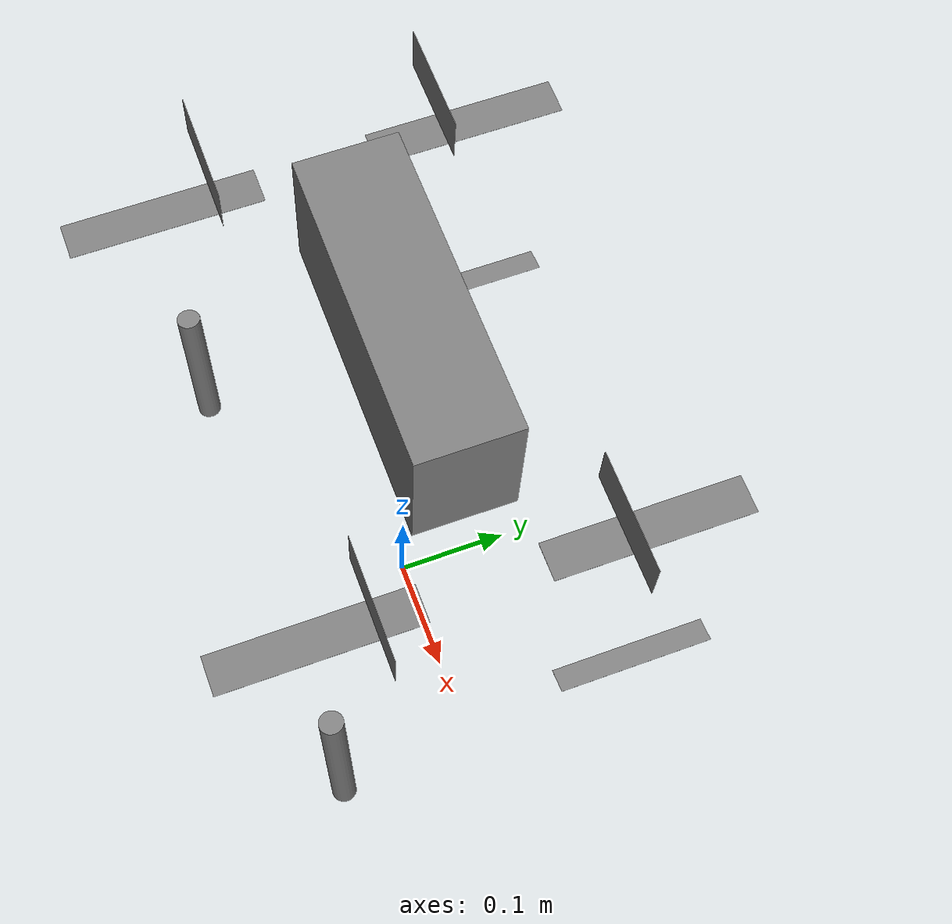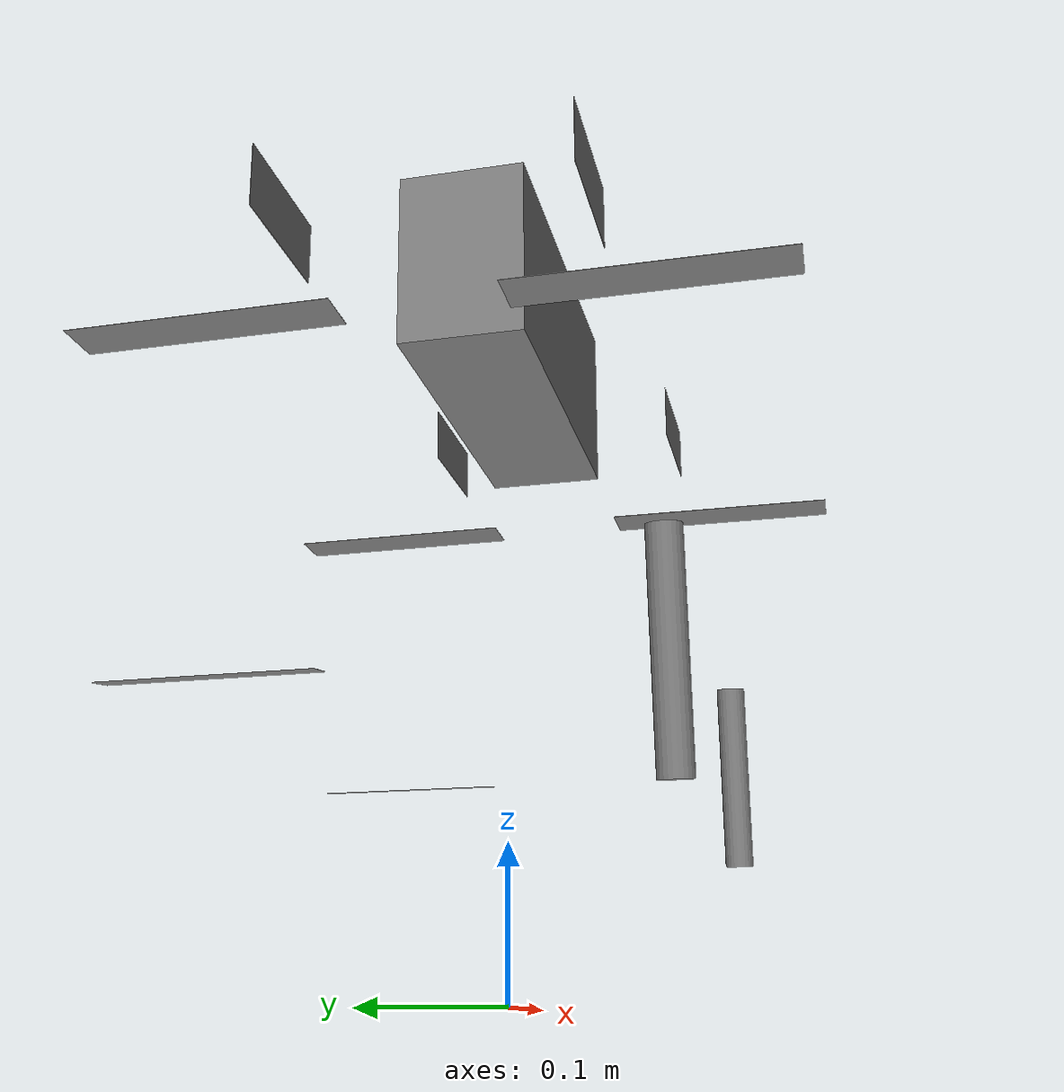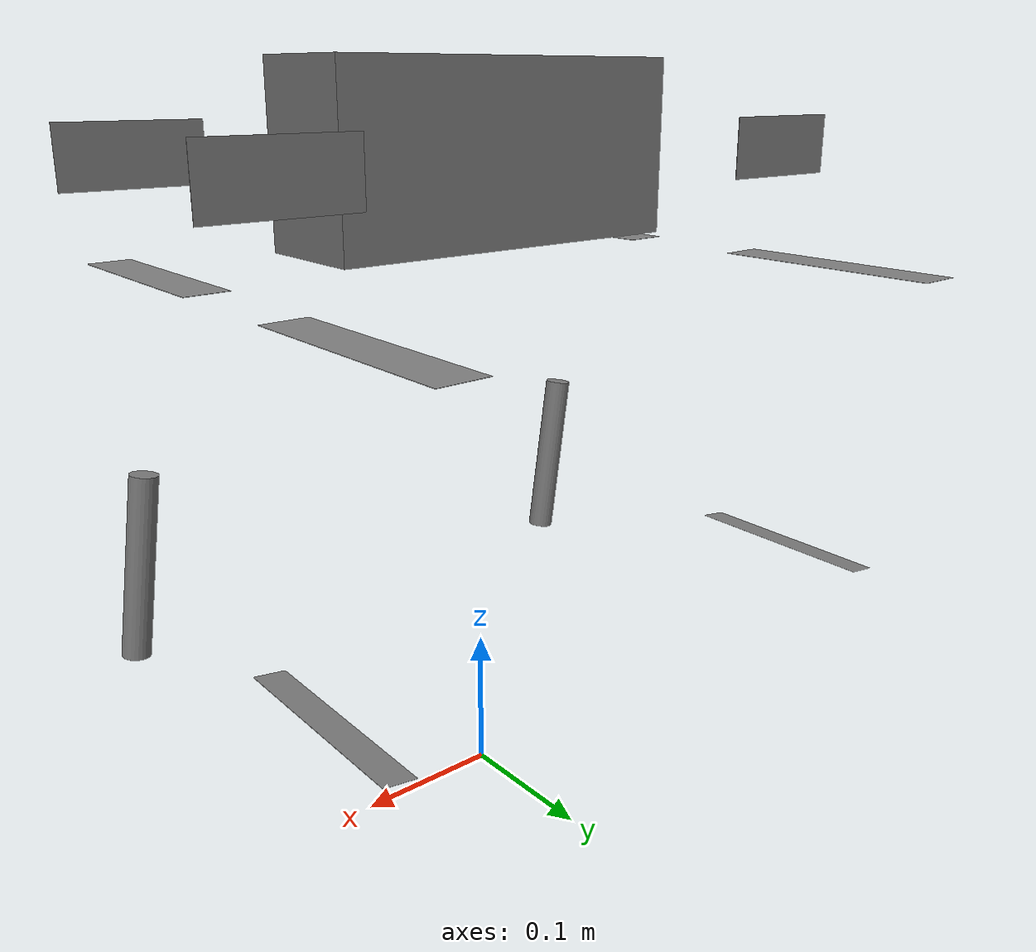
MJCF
<?xml version="1.0" ?>
<mujoco model="generated_robot">
  <compiler angle="radian" autolimits="true"/>
  <option cone="elliptic" impratio="100"/>
  <default>
    <default class="robot">
      <geom friction="0.6" margin="0.001"/>
      <joint damping="2" armature="0.01"/>
    </default>
  </default>
  <worldbody>
    <body name="body_0" pos="0.0001559099182486534 -2.3074069758877158e-05 0.4458831548690796" quat="1.0000097751617432 -0.0001415051519870758 -8.110888302326202e-05 1.9720755517482758e-05">
      <inertial mass="5.231388092041016" diaginertia="0.07207655161619186 0.0632186233997345 0.016897588968276978" pos="0.02246175892651081 0.002006569877266884 -0.00015807151794433594" quat="-0.004950523376464844 0.7062672972679138 -0.00026706233620643616 0.7086466550827026"/>
      <geom name="geom_body_0" type="box" size="0.12551146745681763 0.04006735980510712 0.057250600308179855" pos="0.0001246002793777734 -6.838497938588262e-06 9.211711585521698e-05" quat="1.0018309354782104 -8.264929056167603e-05 1.4204531908035278e-05 -0.00035299058072268963"/>
      <joint name="joint_1_body_0" type="hinge" axis="0.000764116644859314 0.0007713437080383301 1.0017271041870117" range="0.0018395185470581055 -0.005660414695739746" pos="8.658831939101219e-05 0.0015266609843820333 -0.0009988155215978622" stiffness="0.0072043659165501595"/>
      <joint name="joint_2_body_0" type="hinge" axis="1.0032436847686768 -0.0008791089057922363 0.0009414255619049072" range="0 0.86902916431427" pos="0.0011647394858300686 -0.002144098514690995 0.004236141219735146" stiffness="0.00543475616723299"/>
      <body name="body_3" pos="0.18822450935840607 -0.04666043445467949 0.0008230721578001976" quat="0.9996806979179382 0.00041278451681137085 0.0002489890903234482 1.9570812582969666e-05">
        <inertial mass="0.6856133937835693" diaginertia="0.0007475847378373146 0.0006213430315256119 0.0004306142218410969" pos="-0.004905139561742544 0.007485401816666126 0.00038465484976768494" quat="0.5059846639633179 0.5159139037132263 0.49476996064186096 0.48435842990875244"/>
        <geom name="geom_body_3" type="box" size="0.045929498970508575 0.019716305658221245 6.724381819367409e-05" pos="9.386910824105144e-05 -0.044620614498853683 2.8088688850402832e-05" quat="0.7075098752975464 0.7080214619636536 -0.0007904134690761566 -0.0002954199444502592"/>
        <joint name="joint_2_body_3" type="ball" axis="1.0032436847686768 -0.0008791089057922363 0.0009414255619049072" range="0 0.86902916431427" pos="0.0011647394858300686 -0.002144098514690995 0.004236141219735146" stiffness="0.00543475616723299"/>
        <joint name="joint_4_body_3" type="ball" axis="0.0004407614469528198 0.9987324476242065 -0.0003224611282348633" range="0 4.502537250518799" pos="0.0016024238429963589 0.0020660085137933493 0.0034484360367059708" stiffness="0.008321848697960377"/>
        <body name="body_5" pos="0.00023937819059938192 -0.08005650341510773 0.00034152623265981674" quat="1.0001522302627563 -0.0003097411245107651 0.0002756323665380478 6.017275154590607e-05">
          <inertial mass="1.0211026668548584" diaginertia="0.004781339317560196 0.004926311317831278 0.0006828473415225744" pos="-0.0030611567199230194 0.019222833216190338 -0.0296938419342041" quat="0.649500846862793 -0.026713043451309204 0.07670868933200836 0.7574440240859985"/>
          <geom name="geom_body_5" type="box" size="0.015474516898393631 0.07941785454750061 0.0001544523984193802" pos="-0.019892051815986633 1.7923739505931735e-05 -0.07980010658502579" quat="1.0008729696273804 0.0004203692078590393 0.004848208278417587 -5.0697941333055496e-05"/>
          <joint name="joint_4_body_5" type="ball" axis="0.0004407614469528198 0.9987324476242065 -0.0003224611282348633" range="-0.6880797147750854 4.502537250518799" pos="0.0016024238429963589 0.0020660085137933493 0.0034484360367059708" stiffness="0.008321848697960377"/>
          <joint name="joint_6_body_5" type="free" axis="-0.0007094591856002808 0.9972268342971802 0.00032025575637817383" range="-2.822963237762451 -0.8801940679550171" pos="0.0008466816507279873 0.0029061955865472555 -0.0007927771657705307"/>
          <body name="body_7" pos="0.00018269370775669813 -0.00015311286551877856 -0.21187418699264526" quat="0.9994385242462158 -3.306940197944641e-05 4.275701940059662e-05 0.0002353861927986145">
            <inertial mass="0.20291292667388916" diaginertia="0.0017205923795700073 0.001253519207239151 2.9604649171233177e-05" pos="0.004125921055674553 0.001050538499839604 -0.14649400115013123" quat="0.6930393576622009 0.002970069646835327 0.0029065385460853577 0.7221724987030029"/>
            <geom name="geom_body_7" type="cylinder" size="0.010025976225733757 0.06574717164039612" pos="0.010061888955533504 9.575975127518177e-06 -0.06522606313228607" quat="0.9983668923377991 0.0022449493408203125 -0.07306790351867676 -0.00040663802064955235"/>
            <joint name="joint_6_body_7" type="free" axis="-0.0007094591856002808 0.9972268342971802 0.00032025575637817383" range="-2.822963237762451 -0.8801940679550171" pos="0.0008466816507279873 0.0029061955865472555 -0.0007927771657705307"/>
          </body>
        </body>
      </body>
      <joint name="joint_8_body_0" type="hinge" axis="1.0013433694839478 -0.0006708502769470215 0.0011327266693115234" range="0 0.8634499907493591" pos="-0.00013460451737046242 0.00021923310123384 -0.004621079191565514" stiffness="0.004417878575623035"/>
      <body name="body_9" pos="0.18831942975521088 0.04649312049150467 0.00016293954104185104" quat="0.9998779892921448 -1.9609928131103516e-05 0.0001656748354434967 -7.758941501379013e-05">
        <inertial mass="0.6900022625923157" diaginertia="0.000690150074660778 0.0004754820838570595 0.0004710142966359854" pos="-0.004809767473489046 -0.0076555595733225346 0.0002464763820171356" quat="0.4829453229904175 0.4951517581939697 0.513404905796051 0.5089518427848816"/>
        <geom name="geom_body_9" type="box" size="0.04603803530335426 0.01974235475063324 0.0001262882724404335" pos="4.497682675719261e-05 0.04473879188299179 -0.0002659466117620468" quat="0.7096114158630371 0.7072283625602722 0.0002764556556940079 -0.0006416684482246637"/>
        <joint name="joint_8_body_9" type="ball" axis="1.0013433694839478 -0.0006708502769470215 0.0011327266693115234" range="-0.861674964427948 0.8634499907493591" pos="-0.00013460451737046242 0.00021923310123384 -0.004621079191565514" stiffness="0.004417878575623035"/>
        <joint name="joint_10_body_9" type="ball" axis="-0.0013798773288726807 0.9978463649749756 0.0007652342319488525" range="-0.6886460781097412 4.505835056304932" pos="-0.0009174072183668613 -0.0025598781649023294 0.0005572233349084854" stiffness="0.0031467946246266365"/>
        <body name="body_11" pos="9.616720490157604e-06 0.07978498190641403 0.000287029892206192" quat="0.9998443722724915 -0.0006639156490564346 -7.592141628265381e-06 0.0003182338550686836">
          <inertial mass="1.021998643875122" diaginertia="0.004735410213470459 0.004679172765463591 0.0007465369999408722" pos="-0.0030621495097875595 -0.019349927082657814 -0.029802361503243446" quat="0.7505565881729126 0.07823747396469116 -0.027793537825345993 0.6557844281196594"/>
          <geom name="geom_body_11" type="box" size="0.015433249995112419 0.07963097840547562 0.00012821750715374947" pos="-0.019839996472001076 4.451075801625848e-05 -0.07999138534069061" quat="1.0019139051437378 -0.0006290525197982788 0.00475655309855938 7.462059147655964e-05"/>
          <joint name="joint_10_body_11" type="ball" axis="-0.0013798773288726807 0.9978463649749756 0.0007652342319488525" range="-0.6886460781097412 4.505835056304932" pos="-0.0009174072183668613 -0.0025598781649023294 0.0005572233349084854" stiffness="0.0031467946246266365"/>
          <joint name="joint_12_body_11" type="free" axis="-0.000505983829498291 0.9980078935623169 -0.0005637705326080322" range="-2.8258941173553467 -0.8815616369247437" pos="-0.0013963007368147373 -0.003459893399849534 -0.0013032760471105576" stiffness="0.0026979120448231697"/>
          <body name="body_13" pos="0.00028330518398433924 0.00019704242004081607 -0.21119558811187744" quat="0.9995828866958618 -0.0002986881881952286 -0.0001836717128753662 0.0002786600962281227">
            <inertial mass="0.19835209846496582" diaginertia="0.0016031637787818909 0.0012956392019987106 9.740283712744713e-05" pos="0.004155006259679794 0.000994727946817875 -0.14636842906475067" quat="0.6933172941207886 0.002697885036468506 0.0029913149774074554 0.7208156585693359"/>
            <geom name="geom_body_13" type="box" size="0.01007653959095478 0.06570223718881607 6.973836570978165e-05" pos="0.010019268840551376 1.1806754628196359e-05 -0.06482456624507904" quat="0.9999570846557617 0.00031529366970062256 -0.0734444186091423 -0.0003394193481653929"/>
            <joint name="joint_12_body_13" type="free" axis="-0.000505983829498291 0.9980078935623169 -0.0005637705326080322" range="-2.8258941173553467 -0.8815616369247437" pos="-0.0013963007368147373 -0.003459893399849534 -0.0013032760471105576" stiffness="0.0026979120448231697"/>
          </body>
        </body>
      </body>
      <joint name="joint_14_body_0" type="hinge" axis="1.0021857023239136 -0.0034814774990081787 0.0015559196472167969" range="0 0.8651149868965149" pos="0.005525571759790182 -0.0046056583523750305 -0.004154851660132408" stiffness="0.006169465370476246"/>
      <body name="body_15" pos="-0.1881123036146164 -0.04679258167743683 0.0005626911297440529" quat="0.9998038411140442 0.00018290244042873383 -0.00011578947305679321 6.900355219841003e-05">
        <inertial mass="0.6879438161849976" diaginertia="0.0008071772754192352 0.00030413269996643066 0.00045510008931159973" pos="0.0050132726319134235 0.007556266151368618 0.000651434063911438" quat="0.49582207202911377 0.48264646530151367 0.5063480734825134 0.5155770778656006"/>
        <geom name="geom_body_15" type="box" size="0.04605630785226822 0.01986313797533512 0.00011504581198096275" pos="5.133368540555239e-05 -0.04548663645982742 0.0001941286027431488" quat="0.7093026638031006 0.7079410552978516 0.00015624985098838806 -0.0005877704825252295"/>
        <joint name="joint_14_body_15" type="ball" axis="1.0021857023239136 -0.0034814774990081787 0.0015559196472167969" range="-0.8675199747085571 0.8651149868965149" pos="0.005525571759790182 -0.0046056583523750305 -0.004154851660132408" stiffness="0.006169465370476246"/>
        <joint name="joint_16_body_15" type="ball" axis="0.0014895647764205933 0.9998655319213867 -0.0002970695495605469" range="-0.6853617429733276 4.507421970367432" pos="-0.0007888623513281345 0.00041436380706727505 0.0013195816427469254" stiffness="0.005609181709587574"/>
        <body name="body_17" pos="0.00012589828111231327 -0.08038506656885147 0.0009133266285061836" quat="1.0002747774124146 -0.00017413124442100525 -5.6352466344833374e-05 0.00023828446865081787">
          <inertial mass="1.027660846710205" diaginertia="0.004795963875949383 0.004927041474729776 0.0007171835750341415" pos="-0.00307552982121706 0.01954290270805359 -0.029782844707369804" quat="0.6501957178115845 -0.026561081409454346 0.07676324248313904 0.755512535572052"/>
          <geom name="geom_body_17" type="box" size="0.0154616953805089 0.07961426675319672 0.00014763465151190758" pos="-0.019974244758486748 7.227645255625248e-05 -0.07973416149616241" quat="1.0029040575027466 0.0009076744318008423 0.0038947314023971558 -0.00014570681378245354"/>
          <joint name="joint_16_body_17" type="ball" axis="0.0014895647764205933 0.9998655319213867 -0.0002970695495605469" range="-0.6853617429733276 4.507421970367432" pos="-0.0007888623513281345 0.00041436380706727505 0.0013195816427469254" stiffness="0.005609181709587574"/>
          <joint name="joint_18_body_17" type="free" axis="-0.0010257363319396973 0.9983783960342407 0.0008028149604797363" range="-2.821488380432129 -0.8801044225692749" pos="-0.0018534981645643711 -0.0036418067757040262 0.0014244485646486282" stiffness="0.0015435488894581795"/>
          <body name="body_19" pos="0.00019110122229903936 0.0001215506053995341 -0.2111663669347763" quat="0.9993992447853088 -5.1682814955711365e-05 1.0591000318527222e-05 0.00013903342187404633">
            <inertial mass="0.20793545246124268" diaginertia="0.001536472700536251 0.0014491090551018715 7.503270171582699e-05" pos="0.004143183585256338 0.001064481446519494 -0.14618080854415894" quat="0.6931110620498657 0.0033133327960968018 0.0022668875753879547 0.7217390537261963"/>
            <geom name="geom_body_19" type="cylinder" size="0.010056911036372185 0.06571169942617416" pos="0.009975623339414597 7.30063475202769e-05 -0.06510162353515625" quat="0.997787594795227 0.0013688430190086365 -0.07293413579463959 -0.00047225342132151127"/>
            <joint name="joint_18_body_19" type="free" axis="-0.0010257363319396973 0.9983783960342407 0.0008028149604797363" range="-2.821488380432129 -0.8801044225692749" pos="-0.0018534981645643711 -0.0036418067757040262 0.0014244485646486282" stiffness="0.0015435488894581795"/>
          </body>
        </body>
      </body>
      <joint name="joint_20_body_0" type="hinge" axis="1.001636028289795 -0.0014471709728240967 0.0014328360557556152" range="0 0.8618918061256409" pos="0.001024534460157156 -0.0034938978496938944 -0.0072116609662771225" stiffness="0.005431857891380787"/>
      <body name="body_21" pos="-0.1895350068807602 0.04677195101976395 0.0006293589249253273" quat="0.9998080730438232 -0.00012771040201187134 0.0004069022834300995 -0.00012217368930578232">
        <inertial mass="0.693250834941864" diaginertia="0.0009000711143016815 0.0002994425594806671 0.0005044888239353895" pos="0.005076979286968708 -0.007801441941410303 0.0005860067903995514" quat="0.5146531462669373 0.5062254667282104 0.48313963413238525 0.4965269863605499"/>
        <geom name="geom_body_21" type="box" size="0.045875269919633865 0.019821735098958015 0.00016762083396315575" pos="0.0001689755590632558 0.04505588859319687 -0.00011626072227954865" quat="0.70744389295578 0.708260715007782 -0.0006116293370723724 -0.00041417102329432964"/>
        <joint name="joint_20_body_21" type="ball" axis="1.001636028289795 -0.0014471709728240967 0.0014328360557556152" range="-0.8662843704223633 0.8618918061256409" pos="0.001024534460157156 -0.0034938978496938944 -0.0072116609662771225" stiffness="0.005431857891380787"/>
        <joint name="joint_22_body_21" type="ball" axis="-0.00016248226165771484 0.998115062713623 -0.0009303390979766846" range="-0.6833521723747253 4.514345645904541" pos="0.0008558756671845913 0.0017404479440301657 9.571947157382965e-05" stiffness="0.0040293605998158455"/>
        <body name="body_23" pos="0.00013243290595710278 0.08045659959316254 0.0017974944785237312" quat="1.0001543760299683 -0.00021918118000030518 0.00020497292280197144 0.0004849229007959366">
          <inertial mass="1.0264517068862915" diaginertia="0.004843138158321381 0.004883131943643093 0.0007678393740206957" pos="-0.0029949555173516273 -0.019350744783878326 -0.030008036643266678" quat="0.7523447275161743 0.07948502898216248 -0.028274688869714737 0.6533088088035583"/>
          <geom name="geom_body_23" type="box" size="0.015260158106684685 0.07972118258476257 0.00012074178084731102" pos="-0.019936852157115936 6.972262053750455e-05 -0.07998530566692352" quat="1.0028266906738281 -0.00029540807008743286 0.004288177937269211 -7.409858517348766e-05"/>
          <joint name="joint_22_body_23" type="ball" axis="-0.00016248226165771484 0.998115062713623 -0.0009303390979766846" range="-0.6833521723747253 4.514345645904541" pos="0.0008558756671845913 0.0017404479440301657 9.571947157382965e-05" stiffness="0.0040293605998158455"/>
          <joint name="joint_24_body_23" type="free" axis="-2.7164816856384277e-05 1.0013782978057861 0.001072227954864502" range="-2.8247976303100586 -0.8842040300369263" pos="-0.003447862807661295 -0.002624280983582139 0.000902840867638588" stiffness="0.005629238672554493"/>
          <body name="body_25" pos="0.000397959491237998 0.00010335497790947556 -0.21167044341564178" quat="0.9994956851005554 -0.0003835391253232956 2.9046088457107544e-05 0.0005285143852233887">
            <inertial mass="0.202764630317688" diaginertia="0.001629214733839035 0.0013098781928420067 8.994224481284618e-05" pos="0.004049765877425671 0.0010464189108461142 -0.14630091190338135" quat="0.6936948299407959 0.003008812665939331 0.001711677759885788 0.7211692333221436"/>
            <geom name="geom_body_25" type="box" size="0.010303590446710587 0.06575392186641693 1.0785181075334549e-05" pos="0.00999282207340002 6.985332584008574e-05 -0.06529715657234192" quat="0.9999850988388062 7.317215204238892e-05 -0.07193566113710403 -0.00021934416145086288"/>
            <joint name="joint_24_body_25" type="free" axis="-2.7164816856384277e-05 1.0013782978057861 0.001072227954864502" range="-2.8247976303100586 -0.8842040300369263" pos="-0.003447862807661295 -0.002624280983582139 0.000902840867638588" stiffness="0.005629238672554493"/>
          </body>
        </body>
      </body>
    </body>
  </worldbody>
  <actuator>
    <position name="actuator_joint_1_body_0" joint="joint_1_body_0" kp="100"/>
    <position name="actuator_joint_2_body_0" joint="joint_2_body_0" kp="100"/>
    <position name="actuator_joint_4_body_3" joint="joint_4_body_3" kp="100"/>
    <position name="actuator_joint_6_body_5" joint="joint_6_body_5" kp="100"/>
    <position name="actuator_joint_8_body_0" joint="joint_8_body_0" kp="100"/>
    <position name="actuator_joint_10_body_9" joint="joint_10_body_9" kp="100"/>
    <position name="actuator_joint_12_body_11" joint="joint_12_body_11" kp="100"/>
    <position name="actuator_joint_14_body_0" joint="joint_14_body_0" kp="100"/>
    <position name="actuator_joint_16_body_15" joint="joint_16_body_15" kp="100"/>
    <position name="actuator_joint_18_body_17" joint="joint_18_body_17" kp="100"/>
    <position name="actuator_joint_20_body_0" joint="joint_20_body_0" kp="100"/>
    <position name="actuator_joint_22_body_21" joint="joint_22_body_21" kp="100"/>
    <position name="actuator_joint_24_body_23" joint="joint_24_body_23" kp="100"/>
  </actuator>
</mujoco>
